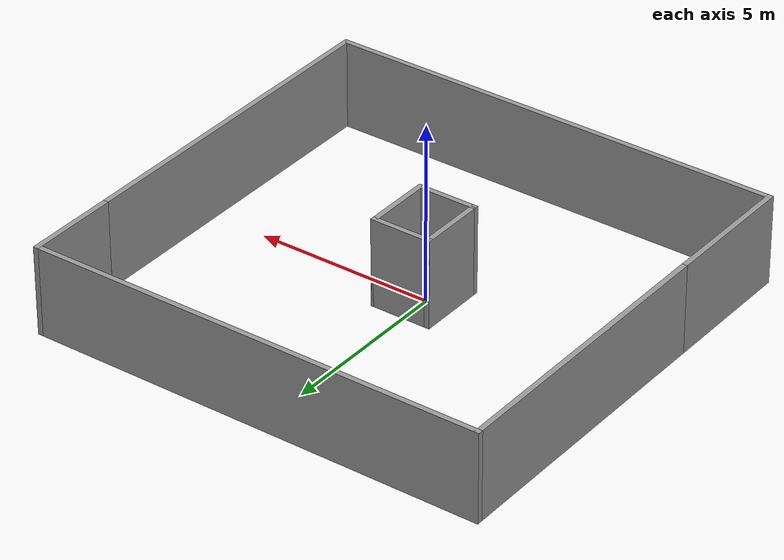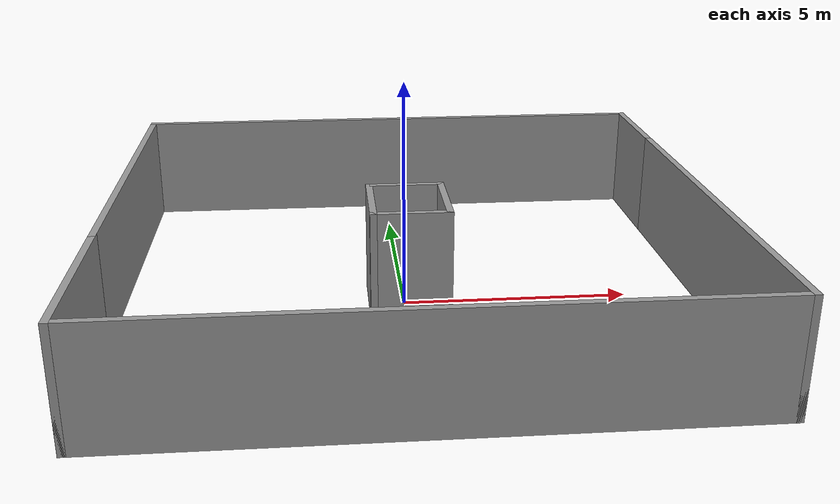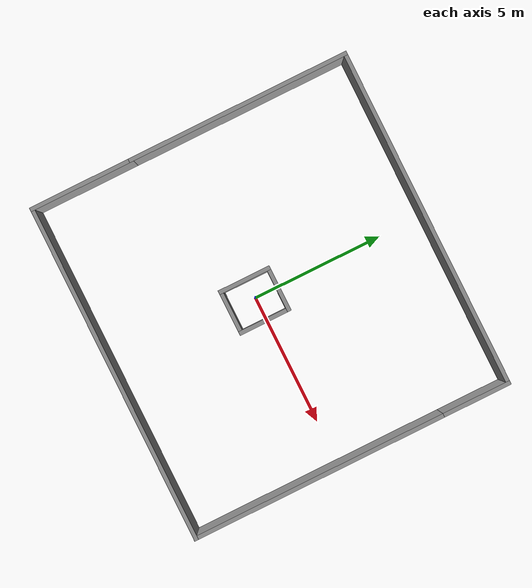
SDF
<sdf version="1.6">
 <world name="default">
  <light name="sun" type="directional">
   <pose>0 0 10 0 -0 0</pose>
   <diffuse>0.8 0.8 0.8 1</diffuse>
   <specular>0.2 0.2 0.2 1</specular>
   <attenuation>
    <range>1000</range>
    <constant>0.9</constant>
    <linear>0.01</linear>
    <quadratic>0.001</quadratic>
   </attenuation>
   <direction>-0.5 0.1 -0.9</direction>
  </light>
  <gravity>0 0 -9.8</gravity>
  <magnetic_field>6e-06 2.3e-05 -4.2e-05</magnetic_field>
  <atmosphere type="adiabatic"/>
  <physics name="default_physics" default="0" type="ode">
   <max_step_size>0.001</max_step_size>
   <real_time_factor>1</real_time_factor>
   <real_time_update_rate>1000</real_time_update_rate>
  </physics>
  <scene><ambient>0.4 0.4 0.4 1</ambient><background>0.7 0.7 0.7 1</background><shadows>1</shadows></scene>
  <audio><device>default</device></audio>
  <spherical_coordinates>
   <surface_model>EARTH_WGS84</surface_model>
   <latitude_deg>0</latitude_deg>
   <longitude_deg>0</longitude_deg>
   <elevation>0</elevation>
   <heading_deg>0</heading_deg>
  </spherical_coordinates>
  <model name="Untitled">
   <pose>0.189735 0.506765 0 0 -0 0</pose>
   <link name="Wall_10">
    <collision name="Wall_10_Collision">
     <geometry><box><size>8.5 0.15 2.5</size></box></geometry>
     <pose>0 0 1.25 0 -0 0</pose>
    </collision>
    <visual name="Wall_10_Visual">
     <pose>0 0 1.25 0 -0 0</pose>
     <geometry><box><size>8.5 0.15 2.5</size></box></geometry>
     <material>
      <script><uri>file://media/materials/scripts/gazebo.material</uri><name>Gazebo/Grey</name></script>
      <ambient>1 1 1 1</ambient>
     </material>
     <meta><layer>0</layer></meta>
    </visual>
    <pose>-6.425 1.925 0 0 -0 -1.5708</pose>
   </link>
   <link name="Wall_5">
    <collision name="Wall_5_Collision">
     <geometry><box><size>4 0.15 2.5</size></box></geometry>
     <pose>0 0 1.25 0 -0 0</pose>
    </collision>
    <visual name="Wall_5_Visual">
     <pose>0 0 1.25 0 -0 0</pose>
     <geometry><box><size>4 0.15 2.5</size></box></geometry>
     <material>
      <script><uri>file://media/materials/scripts/gazebo.material</uri><name>Gazebo/Grey</name></script>
      <ambient>1 1 1 1</ambient>
     </material>
     <meta><layer>0</layer></meta>
    </visual>
    <pose>-6.425 -4.175 0 0 -0 -1.5708</pose>
   </link>
   <link name="Wall_6">
    <collision name="Wall_6_Collision">
     <geometry><box><size>13 0.15 2.5</size></box></geometry>
     <pose>0 0 1.25 0 -0 0</pose>
    </collision>
    <visual name="Wall_6_Visual">
     <pose>0 0 1.25 0 -0 0</pose>
     <geometry><box><size>13 0.15 2.5</size></box></geometry>
     <material>
      <script><uri>file://media/materials/scripts/gazebo.material</uri><name>Gazebo/Grey</name></script>
      <ambient>1 1 1 1</ambient>
     </material>
     <meta><layer>0</layer></meta>
    </visual>
    <pose>-0 -6.1 0 0 -0 0</pose>
   </link>
   <link name="Wall_7">
    <collision name="Wall_7_Collision">
     <geometry><box><size>9.75 0.15 2.5</size></box></geometry>
     <pose>0 0 1.25 0 -0 0</pose>
    </collision>
    <visual name="Wall_7_Visual">
     <pose>0 0 1.25 0 -0 0</pose>
     <geometry><box><size>9.75 0.15 2.5</size></box></geometry>
     <material>
      <script><uri>file://media/materials/scripts/gazebo.material</uri><name>Gazebo/Grey</name></script>
      <ambient>1 1 1 1</ambient>
     </material>
     <meta><layer>0</layer></meta>
    </visual>
    <pose>6.425 -1.3 0 0 -0 1.5708</pose>
   </link>
   <link name="Wall_8">
    <collision name="Wall_8_Collision">
     <geometry><box><size>2.75 0.15 2.5</size></box></geometry>
     <pose>0 0 1.25 0 -0 0</pose>
    </collision>
    <visual name="Wall_8_Visual">
     <pose>0 0 1.25 0 -0 0</pose>
     <geometry><box><size>2.75 0.15 2.5</size></box></geometry>
     <material>
      <script><uri>file://media/materials/scripts/gazebo.material</uri><name>Gazebo/Grey</name></script>
      <ambient>1 1 1 1</ambient>
     </material>
     <meta><layer>0</layer></meta>
    </visual>
    <pose>6.425 4.8 0 0 -0 1.5708</pose>
   </link>
   <link name="Wall_9">
    <collision name="Wall_9_Collision">
     <geometry><box><size>13 0.15 2.5</size></box></geometry>
     <pose>0 0 1.25 0 -0 0</pose>
    </collision>
    <visual name="Wall_9_Visual">
     <pose>0 0 1.25 0 -0 0</pose>
     <geometry><box><size>13 0.15 2.5</size></box></geometry>
     <material>
      <script><uri>file://media/materials/scripts/gazebo.material</uri><name>Gazebo/Grey</name></script>
      <ambient>1 1 1 1</ambient>
     </material>
     <meta><layer>0</layer></meta>
    </visual>
    <pose>-0 6.1 0 0 -0 3.14159</pose>
   </link>
   <static>1</static>
  </model>
  <model name="Untitled_0">
   <pose>0.085648 -0.053926 0 0 -0 0</pose>
   <link name="Wall_21">
    <collision name="Wall_21_Collision">
     <geometry><box><size>2 0.15 2.5</size></box></geometry>
     <pose>0 0 1.25 0 -0 0</pose>
    </collision>
    <visual name="Wall_21_Visual">
     <pose>0 0 1.25 0 -0 0</pose>
     <geometry><box><size>2 0.15 2.5</size></box></geometry>
     <material>
      <script><uri>file://media/materials/scripts/gazebo.material</uri><name>Gazebo/Grey</name></script>
      <ambient>1 1 1 1</ambient>
     </material>
     <meta><layer>0</layer></meta>
    </visual>
    <pose>-0.8 0 0 0 -0 1.5708</pose>
   </link>
   <link name="Wall_22">
    <collision name="Wall_22_Collision">
     <geometry><box><size>1.75 0.15 2.5</size></box></geometry>
     <pose>0 0 1.25 0 -0 0</pose>
    </collision>
    <visual name="Wall_22_Visual">
     <pose>0 0 1.25 0 -0 0</pose>
     <geometry><box><size>1.75 0.15 2.5</size></box></geometry>
     <material>
      <script><uri>file://media/materials/scripts/gazebo.material</uri><name>Gazebo/Grey</name></script>
      <ambient>1 1 1 1</ambient>
     </material>
     <meta><layer>0</layer></meta>
    </visual>
    <pose>0 0.925 0 0 -0 0</pose>
   </link>
   <link name="Wall_23">
    <collision name="Wall_23_Collision">
     <geometry><box><size>2 0.15 2.5</size></box></geometry>
     <pose>0 0 1.25 0 -0 0</pose>
    </collision>
    <visual name="Wall_23_Visual">
     <pose>0 0 1.25 0 -0 0</pose>
     <geometry><box><size>2 0.15 2.5</size></box></geometry>
     <material>
      <script><uri>file://media/materials/scripts/gazebo.material</uri><name>Gazebo/Grey</name></script>
      <ambient>1 1 1 1</ambient>
     </material>
     <meta><layer>0</layer></meta>
    </visual>
    <pose>0.8 0 0 0 -0 -1.5708</pose>
   </link>
   <link name="Wall_24">
    <collision name="Wall_24_Collision">
     <geometry><box><size>1.75 0.15 2.5</size></box></geometry>
     <pose>0 0 1.25 0 -0 0</pose>
    </collision>
    <visual name="Wall_24_Visual">
     <pose>0 0 1.25 0 -0 0</pose>
     <geometry><box><size>1.75 0.15 2.5</size></box></geometry>
     <material>
      <script><uri>file://media/materials/scripts/gazebo.material</uri><name>Gazebo/Grey</name></script>
      <ambient>1 1 1 1</ambient>
     </material>
     <meta><layer>0</layer></meta>
    </visual>
    <pose>0 -0.925 0 0 -0 3.14159</pose>
   </link>
   <static>1</static>
  </model>
 </world>
</sdf>
